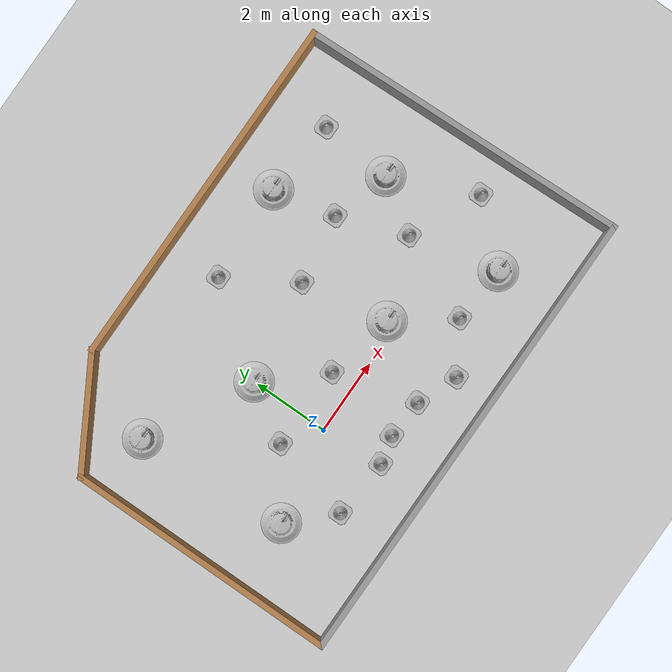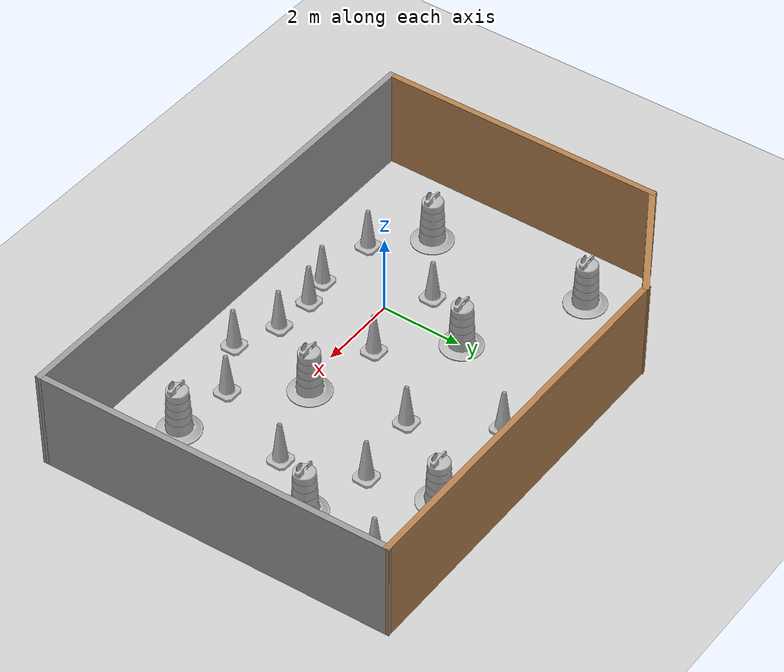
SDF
<sdf version="1.7">
 <world name="default">
  <light name="sun" type="directional">
   <pose>0 0 10 0 -0 0</pose>
   <diffuse>0.8 0.8 0.8 1</diffuse>
   <specular>0.2 0.2 0.2 1</specular>
   <attenuation>
    <range>1000</range>
    <constant>0.9</constant>
    <linear>0.01</linear>
    <quadratic>0.001</quadratic>
   </attenuation>
   <direction>-0.5 0.1 -0.9</direction>
   <spot><inner_angle>0</inner_angle><outer_angle>0</outer_angle><falloff>0</falloff></spot>
  </light>
  <model name="ground_plane">
   <static>1</static>
   <link name="link">
    <collision name="collision">
     <geometry><plane><normal>0 0 1</normal><size>100 100</size></plane></geometry>
     <surface>
      <contact><collide_bitmask>65535</collide_bitmask></contact>
      <friction><ode><mu>100</mu><mu2>50</mu2></ode></friction>
     </surface>
    </collision>
    <visual name="visual">
     <cast_shadows>0</cast_shadows>
     <geometry><plane><normal>0 0 1</normal><size>100 100</size></plane></geometry>
     <material>
      <script><uri>file://media/materials/scripts/gazebo.material</uri><name>Gazebo/Grey</name></script>
     </material>
    </visual>
   </link>
  </model>
  <gravity>0 0 -9.8</gravity>
  <magnetic_field>6e-06 2.3e-05 -4.2e-05</magnetic_field>
  <atmosphere type="adiabatic"/>
  <physics type="ode">
   <max_step_size>0.001</max_step_size>
   <real_time_factor>1</real_time_factor>
   <real_time_update_rate>1000</real_time_update_rate>
  </physics>
  <scene><ambient>0.4 0.4 0.4 1</ambient><background>0.7 0.7 0.7 1</background><shadows>1</shadows></scene>
  <audio><device>default</device></audio>
  <spherical_coordinates>
   <surface_model>EARTH_WGS84</surface_model>
   <latitude_deg>0</latitude_deg>
   <longitude_deg>0</longitude_deg>
   <elevation>0</elevation>
   <heading_deg>0</heading_deg>
  </spherical_coordinates>
  <model name="Construction Barrel">
   <link name="link">
    <inertial>
     <pose>0 0 0.4 0 -0 0</pose>
     <mass>500</mass>
     <inertia><ixx>51.2096</ixx><iyy>51.2096</iyy><izz>25</izz><ixy>0</ixy><ixz>0</ixz><iyz>0</iyz></inertia>
    </inertial>
    <collision name="collision">
     <geometry><mesh><uri>model://construction_barrel/meshes/construction_barrel.dae</uri></mesh></geometry>
    </collision>
    <visual name="visual">
     <geometry><mesh><uri>model://construction_barrel/meshes/construction_barrel.dae</uri></mesh></geometry>
    </visual>
   </link>
   <pose>-0.003641 2.08802 0 0 0 -3e-06</pose>
  </model>
  <model name="Construction Cone">
   <link name="link">
    <collision name="collision">
     <geometry>
      <mesh><scale>10 10 10</scale><uri>model://construction_cone/meshes/construction_cone.dae</uri></mesh>
     </geometry>
    </collision>
    <visual name="visual">
     <geometry>
      <mesh><scale>10 10 10</scale><uri>model://construction_cone/meshes/construction_cone.dae</uri></mesh>
     </geometry>
    </visual>
    <inertial>
     <inertia><ixx>1</ixx><ixy>0</ixy><ixz>0</ixz><iyy>1</iyy><iyz>0</iyz><izz>1</izz></inertia>
     <mass>1</mass>
    </inertial>
   </link>
   <pose>2.95935 -1.93766 -0 0 -1e-06 0</pose>
  </model>
  <model name="my_building">
   <pose>1.87236 1.39746 0 0 -0 0</pose>
   <link name="Wall_10">
    <collision name="Wall_10_Collision">
     <geometry><box><size>3.25 0.15 2.5</size></box></geometry>
     <pose>0 0 1.25 0 -0 0</pose>
    </collision>
    <visual name="Wall_10_Visual">
     <pose>0 0 1.25 0 -0 0</pose>
     <geometry><box><size>3.25 0.15 2.5</size></box></geometry>
     <material>
      <script><uri>file://media/materials/scripts/gazebo.material</uri><name>Gazebo/Wood</name></script>
      <ambient>1 1 1 1</ambient>
     </material>
     <meta><layer>0</layer></meta>
    </visual>
    <pose>-4.82028 3.53762 0 0 -0 0.523599</pose>
   </link>
   <link name="Wall_11">
    <collision name="Wall_11_Collision">
     <geometry><box><size>9.5 0.15 2.5</size></box></geometry>
     <pose>0 0 1.25 0 -0 0</pose>
    </collision>
    <visual name="Wall_11_Visual">
     <pose>0 0 1.25 0 -0 0</pose>
     <geometry><box><size>9.5 0.15 2.5</size></box></geometry>
     <material>
      <script><uri>file://media/materials/scripts/gazebo.material</uri><name>Gazebo/Wood</name></script>
      <ambient>1 1 1 1</ambient>
     </material>
     <meta><layer>0</layer></meta>
    </visual>
    <pose>1.19706 4.31262 0 0 -0 0</pose>
   </link>
   <link name="Wall_12">
    <collision name="Wall_12_Collision">
     <geometry><box><size>8.80574 0.15 2.5</size></box></geometry>
     <pose>0 0 1.25 0 -0 0</pose>
    </collision>
    <visual name="Wall_12_Visual">
     <pose>0 0 1.25 0 -0 0</pose>
     <geometry><box><size>8.80574 0.15 2.5</size></box></geometry>
     <material>
      <script><uri>file://media/materials/scripts/gazebo.material</uri><name>Gazebo/Grey</name></script>
      <ambient>1 1 1 1</ambient>
     </material>
     <meta><layer>0</layer></meta>
    </visual>
    <pose>6.02972 -0.012385 0 0 -0 -1.53436</pose>
   </link>
   <link name="Wall_5">
    <collision name="Wall_5_Collision">
     <geometry><box><size>7.25 0.15 2.5</size></box></geometry>
     <pose>0 0 1.25 0 -0 0</pose>
    </collision>
    <visual name="Wall_5_Visual">
     <pose>0 0 1.25 0 -0 0</pose>
     <geometry><box><size>7.25 0.15 2.5</size></box></geometry>
     <material>
      <script><uri>file://media/materials/scripts/gazebo.material</uri><name>Gazebo/Wood</name></script>
      <ambient>1 1 1 1</ambient>
     </material>
     <meta><layer>0</layer></meta>
    </visual>
    <pose>-6.16261 -0.787385 0 0 -0 -1.5708</pose>
   </link>
   <link name="Wall_6">
    <collision name="Wall_6_Collision">
     <geometry><box><size>12.5 0.15 2.5</size></box></geometry>
     <pose>0 0 1.25 0 -0 0</pose>
    </collision>
    <visual name="Wall_6_Visual">
     <pose>0 0 1.25 0 -0 0</pose>
     <geometry><box><size>12.5 0.15 2.5</size></box></geometry>
     <material>
      <script><uri>file://media/materials/scripts/gazebo.material</uri><name>Gazebo/Grey</name></script>
      <ambient>1 1 1 1</ambient>
     </material>
     <meta><layer>0</layer></meta>
    </visual>
    <pose>0.012385 -4.33739 0 0 -0 0</pose>
   </link>
   <static>1</static>
  </model>
  <model name="Construction Cone_0">
   <link name="link">
    <collision name="collision">
     <geometry>
      <mesh><scale>10 10 10</scale><uri>model://construction_cone/meshes/construction_cone.dae</uri></mesh>
     </geometry>
    </collision>
    <visual name="visual">
     <geometry>
      <mesh><scale>10 10 10</scale><uri>model://construction_cone/meshes/construction_cone.dae</uri></mesh>
     </geometry>
    </visual>
    <inertial>
     <inertia><ixx>1</ixx><ixy>0</ixy><ixz>0</ixz><iyy>1</iyy><iyz>0</iyz><izz>1</izz></inertia>
     <mass>1</mass>
    </inertial>
   </link>
   <pose>0.132288 -1.63082 0 0 -0 0</pose>
  </model>
  <model name="Construction Cone_1">
   <link name="link">
    <collision name="collision">
     <geometry>
      <mesh><scale>10 10 10</scale><uri>model://construction_cone/meshes/construction_cone.dae</uri></mesh>
     </geometry>
    </collision>
    <visual name="visual">
     <geometry>
      <mesh><scale>10 10 10</scale><uri>model://construction_cone/meshes/construction_cone.dae</uri></mesh>
     </geometry>
    </visual>
    <inertial>
     <inertia><ixx>1</ixx><ixy>0</ixy><ixz>0</ixz><iyy>1</iyy><iyz>0</iyz><izz>1</izz></inertia>
     <mass>1</mass>
    </inertial>
   </link>
   <pose>0.861477 -1.45702 0 0 -0 0</pose>
  </model>
  <model name="Construction Cone_2">
   <link name="link">
    <collision name="collision">
     <geometry>
      <mesh><scale>10 10 10</scale><uri>model://construction_cone/meshes/construction_cone.dae</uri></mesh>
     </geometry>
    </collision>
    <visual name="visual">
     <geometry>
      <mesh><scale>10 10 10</scale><uri>model://construction_cone/meshes/construction_cone.dae</uri></mesh>
     </geometry>
    </visual>
    <inertial>
     <inertia><ixx>1</ixx><ixy>0</ixy><ixz>0</ixz><iyy>1</iyy><iyz>0</iyz><izz>1</izz></inertia>
     <mass>1</mass>
    </inertial>
   </link>
   <pose>1.8922 -1.51017 0 0 -0 0</pose>
  </model>
  <model name="Construction Barrel_0">
   <link name="link">
    <inertial>
     <pose>0 0 0.4 0 -0 0</pose>
     <mass>500</mass>
     <inertia><ixx>51.2096</ixx><iyy>51.2096</iyy><izz>25</izz><ixy>0</ixy><ixz>0</ixz><iyz>0</iyz></inertia>
    </inertial>
    <collision name="collision">
     <geometry><mesh><uri>model://construction_barrel/meshes/construction_barrel.dae</uri></mesh></geometry>
    </collision>
    <visual name="visual">
     <geometry><mesh><uri>model://construction_barrel/meshes/construction_barrel.dae</uri></mesh></geometry>
    </visual>
   </link>
   <pose>-2.47773 -0.45906 0 0 -0 0</pose>
  </model>
  <model name="Construction Barrel_1">
   <link name="link">
    <inertial>
     <pose>0 0 0.4 0 -0 0</pose>
     <mass>500</mass>
     <inertia><ixx>51.2096</ixx><iyy>51.2096</iyy><izz>25</izz><ixy>0</ixy><ixz>0</ixz><iyz>0</iyz></inertia>
    </inertial>
    <collision name="collision">
     <geometry><mesh><uri>model://construction_barrel/meshes/construction_barrel.dae</uri></mesh></geometry>
    </collision>
    <visual name="visual">
     <geometry><mesh><uri>model://construction_barrel/meshes/construction_barrel.dae</uri></mesh></geometry>
    </visual>
   </link>
   <pose>3.10876 0.25727 0 0 -0 0</pose>
  </model>
  <model name="Construction Barrel_2">
   <link name="link">
    <inertial>
     <pose>0 0 0.4 0 -0 0</pose>
     <mass>500</mass>
     <inertia><ixx>51.2096</ixx><iyy>51.2096</iyy><izz>25</izz><ixy>0</ixy><ixz>0</ixz><iyz>0</iyz></inertia>
    </inertial>
    <collision name="collision">
     <geometry><mesh><uri>model://construction_barrel/meshes/construction_barrel.dae</uri></mesh></geometry>
    </collision>
    <visual name="visual">
     <geometry><mesh><uri>model://construction_barrel/meshes/construction_barrel.dae</uri></mesh></geometry>
    </visual>
   </link>
   <pose>4.16644 4.42408 0 0 -0 0</pose>
  </model>
  <model name="Construction Barrel_3">
   <link name="link">
    <inertial>
     <pose>0 0 0.4 0 -0 0</pose>
     <mass>500</mass>
     <inertia><ixx>51.2096</ixx><iyy>51.2096</iyy><izz>25</izz><ixy>0</ixy><ixz>0</ixz><iyz>0</iyz></inertia>
    </inertial>
    <collision name="collision">
     <geometry><mesh><uri>model://construction_barrel/meshes/construction_barrel.dae</uri></mesh></geometry>
    </collision>
    <visual name="visual">
     <geometry><mesh><uri>model://construction_barrel/meshes/construction_barrel.dae</uri></mesh></geometry>
    </visual>
   </link>
   <pose>-2.73875 3.54219 0 0 -0 0</pose>
  </model>
  <model name="Construction Barrel_4">
   <link name="link">
    <inertial>
     <pose>0 0 0.4 0 -0 0</pose>
     <mass>500</mass>
     <inertia><ixx>51.2096</ixx><iyy>51.2096</iyy><izz>25</izz><ixy>0</ixy><ixz>0</ixz><iyz>0</iyz></inertia>
    </inertial>
    <collision name="collision">
     <geometry><mesh><uri>model://construction_barrel/meshes/construction_barrel.dae</uri></mesh></geometry>
    </collision>
    <visual name="visual">
     <geometry><mesh><uri>model://construction_barrel/meshes/construction_barrel.dae</uri></mesh></geometry>
    </visual>
   </link>
   <pose>6.03241 2.34215 0 0 -0 0</pose>
  </model>
  <model name="Construction Barrel_5">
   <link name="link">
    <inertial>
     <pose>0 0 0.4 0 -0 0</pose>
     <mass>500</mass>
     <inertia><ixx>51.2096</ixx><iyy>51.2096</iyy><izz>25</izz><ixy>0</ixy><ixz>0</ixz><iyz>0</iyz></inertia>
    </inertial>
    <collision name="collision">
     <geometry><mesh><uri>model://construction_barrel/meshes/construction_barrel.dae</uri></mesh></geometry>
    </collision>
    <visual name="visual">
     <geometry><mesh><uri>model://construction_barrel/meshes/construction_barrel.dae</uri></mesh></geometry>
    </visual>
   </link>
   <pose>5.69881 -1.2865 0 0 -0 0</pose>
  </model>
  <model name="Construction Cone_3">
   <link name="link">
    <collision name="collision">
     <geometry>
      <mesh><scale>10 10 10</scale><uri>model://construction_cone/meshes/construction_cone.dae</uri></mesh>
     </geometry>
    </collision>
    <visual name="visual">
     <geometry>
      <mesh><scale>10 10 10</scale><uri>model://construction_cone/meshes/construction_cone.dae</uri></mesh>
     </geometry>
    </visual>
    <inertial>
     <inertia><ixx>1</ixx><ixy>0</ixy><ixz>0</ixz><iyy>1</iyy><iyz>0</iyz><izz>1</izz></inertia>
     <mass>1</mass>
    </inertial>
   </link>
   <pose>2.69296 2.53247 0 0 -0 0</pose>
  </model>
  <model name="Construction Cone_4">
   <link name="link">
    <collision name="collision">
     <geometry>
      <mesh><scale>10 10 10</scale><uri>model://construction_cone/meshes/construction_cone.dae</uri></mesh>
     </geometry>
    </collision>
    <visual name="visual">
     <geometry>
      <mesh><scale>10 10 10</scale><uri>model://construction_cone/meshes/construction_cone.dae</uri></mesh>
     </geometry>
    </visual>
    <inertial>
     <inertia><ixx>1</ixx><ixy>0</ixy><ixz>0</ixz><iyy>1</iyy><iyz>0</iyz><izz>1</izz></inertia>
     <mass>1</mass>
    </inertial>
   </link>
   <pose>5.164 1.02775 0 0 -0 0</pose>
  </model>
  <model name="Construction Cone_5">
   <link name="link">
    <collision name="collision">
     <geometry>
      <mesh><scale>10 10 10</scale><uri>model://construction_cone/meshes/construction_cone.dae</uri></mesh>
     </geometry>
    </collision>
    <visual name="visual">
     <geometry>
      <mesh><scale>10 10 10</scale><uri>model://construction_cone/meshes/construction_cone.dae</uri></mesh>
     </geometry>
    </visual>
    <inertial>
     <inertia><ixx>1</ixx><ixy>0</ixy><ixz>0</ixz><iyy>1</iyy><iyz>0</iyz><izz>1</izz></inertia>
     <mass>1</mass>
    </inertial>
   </link>
   <pose>1.61464 4.30229 0 0 -0 0</pose>
  </model>
  <model name="Construction Cone_6">
   <link name="link">
    <collision name="collision">
     <geometry>
      <mesh><scale>10 10 10</scale><uri>model://construction_cone/meshes/construction_cone.dae</uri></mesh>
     </geometry>
    </collision>
    <visual name="visual">
     <geometry>
      <mesh><scale>10 10 10</scale><uri>model://construction_cone/meshes/construction_cone.dae</uri></mesh>
     </geometry>
    </visual>
    <inertial>
     <inertia><ixx>1</ixx><ixy>0</ixy><ixz>0</ixz><iyy>1</iyy><iyz>0</iyz><izz>1</izz></inertia>
     <mass>1</mass>
    </inertial>
   </link>
   <pose>4.20132 -1.16662 0 0 -0 0</pose>
  </model>
  <model name="Construction Cone_7">
   <link name="link">
    <collision name="collision">
     <geometry>
      <mesh><scale>10 10 10</scale><uri>model://construction_cone/meshes/construction_cone.dae</uri></mesh>
     </geometry>
    </collision>
    <visual name="visual">
     <geometry>
      <mesh><scale>10 10 10</scale><uri>model://construction_cone/meshes/construction_cone.dae</uri></mesh>
     </geometry>
    </visual>
    <inertial>
     <inertia><ixx>1</ixx><ixy>0</ixy><ixz>0</ixz><iyy>1</iyy><iyz>0</iyz><izz>1</izz></inertia>
     <mass>1</mass>
    </inertial>
   </link>
   <pose>7.00966 0.151742 0 0 -0 0</pose>
  </model>
  <model name="Construction Cone_8">
   <link name="link">
    <collision name="collision">
     <geometry>
      <mesh><scale>10 10 10</scale><uri>model://construction_cone/meshes/construction_cone.dae</uri></mesh>
     </geometry>
    </collision>
    <visual name="visual">
     <geometry>
      <mesh><scale>10 10 10</scale><uri>model://construction_cone/meshes/construction_cone.dae</uri></mesh>
     </geometry>
    </visual>
    <inertial>
     <inertia><ixx>1</ixx><ixy>0</ixy><ixz>0</ixz><iyy>1</iyy><iyz>0</iyz><izz>1</izz></inertia>
     <mass>1</mass>
    </inertial>
   </link>
   <pose>4.5134 2.80677 0 0 -0 0</pose>
  </model>
  <model name="Construction Cone_9">
   <link name="link">
    <collision name="collision">
     <geometry>
      <mesh><scale>10 10 10</scale><uri>model://construction_cone/meshes/construction_cone.dae</uri></mesh>
     </geometry>
    </collision>
    <visual name="visual">
     <geometry>
      <mesh><scale>10 10 10</scale><uri>model://construction_cone/meshes/construction_cone.dae</uri></mesh>
     </geometry>
    </visual>
    <inertial>
     <inertia><ixx>1</ixx><ixy>0</ixy><ixz>0</ixz><iyy>1</iyy><iyz>0</iyz><izz>1</izz></inertia>
     <mass>1</mass>
    </inertial>
   </link>
   <pose>6.18313 4.24075 0 0 -0 0</pose>
  </model>
  <model name="Construction Cone_10">
   <link name="link">
    <collision name="collision">
     <geometry>
      <mesh><scale>10 10 10</scale><uri>model://construction_cone/meshes/construction_cone.dae</uri></mesh>
     </geometry>
    </collision>
    <visual name="visual">
     <geometry>
      <mesh><scale>10 10 10</scale><uri>model://construction_cone/meshes/construction_cone.dae</uri></mesh>
     </geometry>
    </visual>
    <inertial>
     <inertia><ixx>1</ixx><ixy>0</ixy><ixz>0</ixz><iyy>1</iyy><iyz>0</iyz><izz>1</izz></inertia>
     <mass>1</mass>
    </inertial>
   </link>
   <pose>1.29924 0.650084 0 0 -0 0</pose>
  </model>
  <model name="Construction Cone_11">
   <link name="link">
    <collision name="collision">
     <geometry>
      <mesh><scale>10 10 10</scale><uri>model://construction_cone/meshes/construction_cone.dae</uri></mesh>
     </geometry>
    </collision>
    <visual name="visual">
     <geometry>
      <mesh><scale>10 10 10</scale><uri>model://construction_cone/meshes/construction_cone.dae</uri></mesh>
     </geometry>
    </visual>
    <inertial>
     <inertia><ixx>1</ixx><ixy>0</ixy><ixz>0</ixz><iyy>1</iyy><iyz>0</iyz><izz>1</izz></inertia>
     <mass>1</mass>
    </inertial>
   </link>
   <pose>-0.879875 0.68374 0 0 -0 0</pose>
  </model>
  <model name="Construction Cone_12">
   <link name="link">
    <collision name="collision">
     <geometry>
      <mesh><scale>10 10 10</scale><uri>model://construction_cone/meshes/construction_cone.dae</uri></mesh>
     </geometry>
    </collision>
    <visual name="visual">
     <geometry>
      <mesh><scale>10 10 10</scale><uri>model://construction_cone/meshes/construction_cone.dae</uri></mesh>
     </geometry>
    </visual>
    <inertial>
     <inertia><ixx>1</ixx><ixy>0</ixy><ixz>0</ixz><iyy>1</iyy><iyz>0</iyz><izz>1</izz></inertia>
     <mass>1</mass>
    </inertial>
   </link>
   <pose>-1.43071 -1.50863 0 0 -0 0</pose>
  </model>
 </world>
</sdf>
